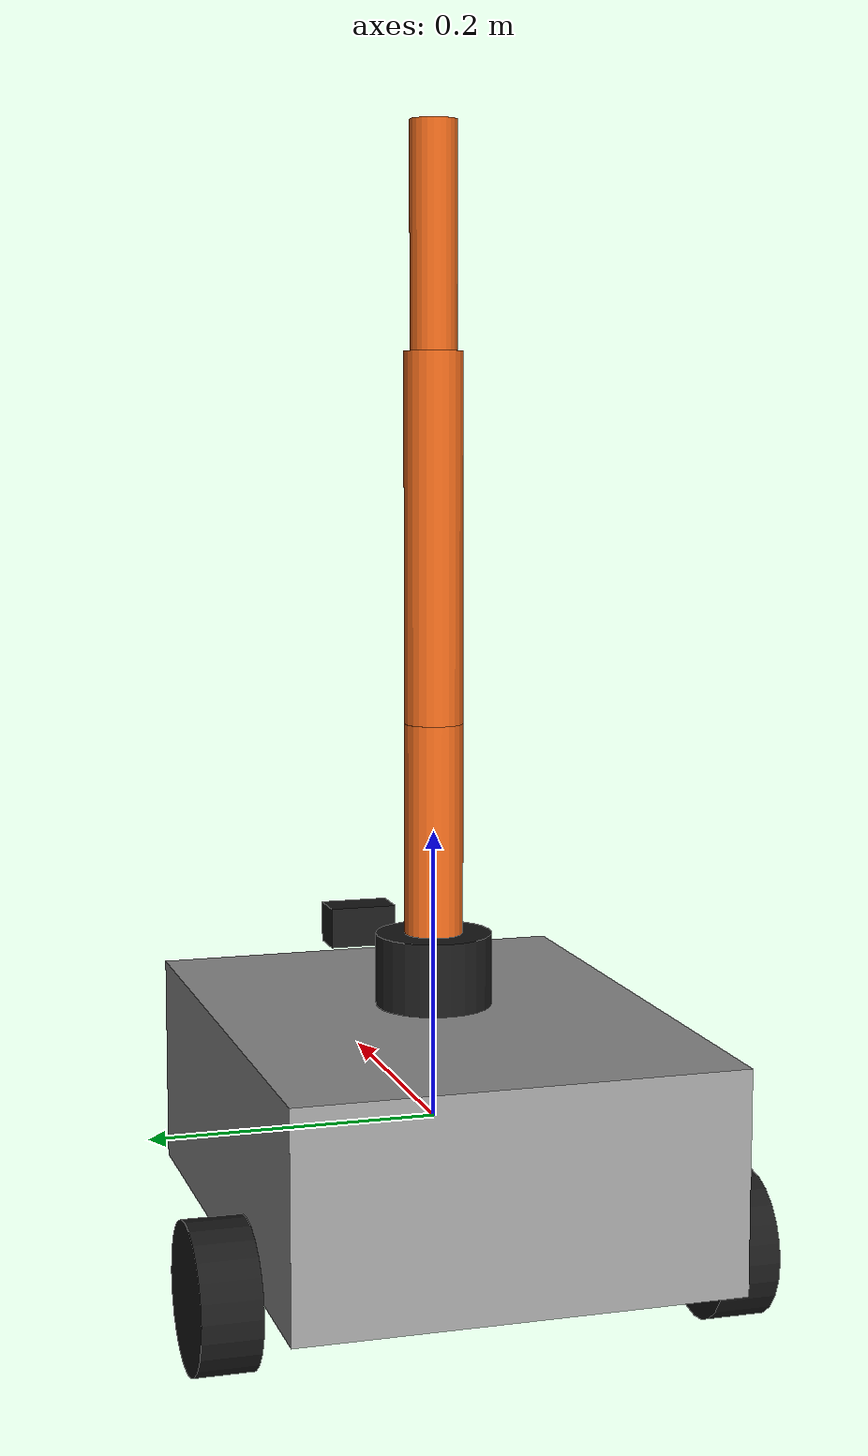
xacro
<?xml version="1.0"?>
<robot name="semih" xmlns:xacro="http://www.ros.org/wiki/xacro">

  <!-- ================= Properties ================= -->
  <xacro:property name="base_length" value="0.4"/>
  <xacro:property name="base_width"  value="0.3"/>
  <xacro:property name="base_height" value="0.15"/>
  <xacro:property name="wheel_radius" value="0.05"/>
  <xacro:property name="wheel_width"  value="0.04"/>
  <xacro:property name="wheel_separation" value="0.35"/>

  <xacro:property name="arm_link1_len" value="0.20"/>
  <xacro:property name="arm_link2_len" value="0.25"/>
  <xacro:property name="arm_link3_len" value="0.15"/>
  <xacro:property name="link_radius" value="0.02"/>

  <material name="grey">
    <color rgba="0.6 0.6 0.6 1"/>
  </material>
  <material name="orange">
    <color rgba="0.9 0.4 0.1 1"/>
  </material>
  <material name="black">
    <color rgba="0.1 0.1 0.1 1"/>
  </material>

  <!-- ================= Base ================= -->
  <link name="base_link">
    <visual>
      <geometry>
        <box size="${base_length} ${base_width} ${base_height}"/>
      </geometry>
      <material name="grey"/>
    </visual>
    <collision>
      <geometry>
        <box size="${base_length} ${base_width} ${base_height}"/>
      </geometry>
    </collision>
    <inertial>
      <mass value="5.0"/>
      <inertia ixx="0.05" ixy="0" ixz="0" iyy="0.06" iyz="0" izz="0.08"/>
    </inertial>
  </link>

  <!-- ================= Wheels (differential drive) ================= -->
  <xacro:macro name="wheel" params="prefix y_pos">
    <link name="${prefix}_wheel_link">
      <visual>
        <origin xyz="0 0 0" rpy="1.5708 0 0"/>
        <geometry>
          <cylinder radius="${wheel_radius}" length="${wheel_width}"/>
        </geometry>
        <material name="black"/>
      </visual>
      <collision>
        <origin xyz="0 0 0" rpy="1.5708 0 0"/>
        <geometry>
          <cylinder radius="${wheel_radius}" length="${wheel_width}"/>
        </geometry>
      </collision>
      <inertial>
        <mass value="0.5"/>
        <inertia ixx="0.001" ixy="0" ixz="0" iyy="0.001" iyz="0" izz="0.001"/>
      </inertial>
    </link>

    <joint name="${prefix}_wheel_joint" type="continuous">
      <parent link="base_link"/>
      <child link="${prefix}_wheel_link"/>
      <origin xyz="-0.1 ${y_pos} -${base_height/2}" rpy="0 0 0"/>
      <axis xyz="0 1 0"/>
    </joint>
  </xacro:macro>

  <xacro:wheel prefix="left"  y_pos="${wheel_separation/2}"/>
  <xacro:wheel prefix="right" y_pos="-${wheel_separation/2}"/>

  <!-- Caster (passive, fixed for simplicity in this first test) -->
  <link name="caster_wheel_link">
    <visual>
      <geometry>
        <sphere radius="${wheel_radius*0.7}"/>
      </geometry>
      <material name="black"/>
    </visual>
    <collision>
      <geometry>
        <sphere radius="${wheel_radius*0.7}"/>
      </geometry>
    </collision>
    <inertial>
      <mass value="0.2"/>
      <inertia ixx="0.0005" ixy="0" ixz="0" iyy="0.0005" iyz="0" izz="0.0005"/>
    </inertial>
  </link>

  <joint name="caster_wheel_joint" type="fixed">
    <parent link="base_link"/>
    <child link="caster_wheel_link"/>
    <origin xyz="0.15 0 -${base_height/2}" rpy="0 0 0"/>
  </joint>

  <!-- ================= Arm (3 DOF, simplified geometry) ================= -->
  <link name="arm_link1">
    <visual>
      <origin xyz="0 0 ${arm_link1_len/2}" rpy="0 0 0"/>
      <geometry>
        <cylinder radius="${link_radius}" length="${arm_link1_len}"/>
      </geometry>
      <material name="orange"/>
    </visual>
    <collision>
      <origin xyz="0 0 ${arm_link1_len/2}" rpy="0 0 0"/>
      <geometry>
        <cylinder radius="${link_radius}" length="${arm_link1_len}"/>
      </geometry>
    </collision>
    <inertial>
      <mass value="0.3"/>
      <inertia ixx="0.0005" ixy="0" ixz="0" iyy="0.0005" iyz="0" izz="0.0002"/>
    </inertial>
  </link>

  <joint name="arm_joint1" type="revolute">
    <parent link="base_link"/>
    <child link="arm_link1"/>
    <origin xyz="0 0 ${base_height/2}" rpy="0 0 0"/>
    <axis xyz="0 0 1"/>
    <limit lower="-3.14" upper="3.14" effort="10" velocity="1.0"/>
  </joint>

  <link name="arm_link2">
    <visual>
      <origin xyz="0 0 ${arm_link2_len/2}" rpy="0 0 0"/>
      <geometry>
        <cylinder radius="${link_radius}" length="${arm_link2_len}"/>
      </geometry>
      <material name="orange"/>
    </visual>
    <collision>
      <origin xyz="0 0 ${arm_link2_len/2}" rpy="0 0 0"/>
      <geometry>
        <cylinder radius="${link_radius}" length="${arm_link2_len}"/>
      </geometry>
    </collision>
    <inertial>
      <mass value="0.25"/>
      <inertia ixx="0.0004" ixy="0" ixz="0" iyy="0.0004" iyz="0" izz="0.0001"/>
    </inertial>
  </link>

  <joint name="arm_joint2" type="revolute">
    <parent link="arm_link1"/>
    <child link="arm_link2"/>
    <origin xyz="0 0 ${arm_link1_len}" rpy="0 0 0"/>
    <axis xyz="0 1 0"/>
    <limit lower="-1.57" upper="1.57" effort="10" velocity="1.0"/>
  </joint>

  <link name="arm_link3">
    <visual>
      <origin xyz="0 0 ${arm_link3_len/2}" rpy="0 0 0"/>
      <geometry>
        <cylinder radius="${link_radius*0.8}" length="${arm_link3_len}"/>
      </geometry>
      <material name="orange"/>
    </visual>
    <collision>
      <origin xyz="0 0 ${arm_link3_len/2}" rpy="0 0 0"/>
      <geometry>
        <cylinder radius="${link_radius*0.8}" length="${arm_link3_len}"/>
      </geometry>
    </collision>
    <inertial>
      <mass value="0.15"/>
      <inertia ixx="0.0002" ixy="0" ixz="0" iyy="0.0002" iyz="0" izz="0.00005"/>
    </inertial>
  </link>

  <joint name="arm_joint3" type="revolute">
    <parent link="arm_link2"/>
    <child link="arm_link3"/>
    <origin xyz="0 0 ${arm_link2_len}" rpy="0 0 0"/>
    <axis xyz="0 1 0"/>
    <limit lower="-1.57" upper="1.57" effort="10" velocity="1.0"/>
  </joint>

  <!-- ================= Camera ================= -->
  <link name="camera_link">
    <visual>
      <geometry>
        <box size="0.03 0.05 0.03"/>
      </geometry>
      <material name="black"/>
    </visual>
    <collision>
      <geometry>
        <box size="0.03 0.05 0.03"/>
      </geometry>
    </collision>
    <inertial>
      <mass value="0.05"/>
      <inertia ixx="0.00001" ixy="0" ixz="0" iyy="0.00001" iyz="0" izz="0.00001"/>
    </inertial>
  </link>

  <joint name="camera_joint" type="fixed">
    <parent link="base_link"/>
    <child link="camera_link"/>
    <!-- Mounted on the front-top edge of the base, facing forward (+x) -->
    <origin xyz="0.2 0 ${base_height/2 + 0.02}" rpy="0 0 0"/>
  </joint>

  <!-- ================= Lidar ================= -->
  <link name="lidar_link">
    <visual>
      <geometry>
        <cylinder radius="0.04" length="0.05"/>
      </geometry>
      <material name="black"/>
    </visual>
    <collision>
      <geometry>
        <cylinder radius="0.04" length="0.05"/>
      </geometry>
    </collision>
    <inertial>
      <mass value="0.1"/>
      <inertia ixx="0.0001" ixy="0" ixz="0" iyy="0.0001" iyz="0" izz="0.0001"/>
    </inertial>
  </link>

  <joint name="lidar_joint" type="fixed">
    <parent link="base_link"/>
    <child link="lidar_link"/>
    <!-- Mounted on top-center of the base -->
    <origin xyz="0 0 ${base_height/2 + 0.03}" rpy="0 0 0"/>
  </joint>

  <!-- ================= ros2_control ================= -->
  <ros2_control name="semih_arm_system" type="system">
    <hardware>
      <plugin>gz_ros2_control/GazeboSimSystem</plugin>
    </hardware>
    <joint name="arm_joint1">
      <command_interface name="position"/>
      <state_interface name="position"/>
      <state_interface name="velocity"/>
    </joint>
    <joint name="arm_joint2">
      <command_interface name="position"/>
      <state_interface name="position"/>
      <state_interface name="velocity"/>
    </joint>
    <joint name="arm_joint3">
      <command_interface name="position"/>
      <state_interface name="position"/>
      <state_interface name="velocity"/>
    </joint>
  </ros2_control>

  <!-- ================= Gazebo plugins ================= -->
  <gazebo>
    <plugin filename="libignition-gazebo-diff-drive-system.so" name="ignition::gazebo::systems::DiffDrive">
      <left_joint>left_wheel_joint</left_joint>
      <right_joint>right_wheel_joint</right_joint>
      <wheel_separation>${wheel_separation}</wheel_separation>
      <wheel_radius>${wheel_radius}</wheel_radius>
      <odom_publish_frequency>30</odom_publish_frequency>
      <topic>cmd_vel</topic>
      <odom_topic>odom</odom_topic>
      <tf_topic>/model/semih/tf</tf_topic>
      <frame_id>odom</frame_id>
      <child_frame_id>base_link</child_frame_id>
    </plugin>

    <plugin filename="libignition-gazebo-joint-state-publisher-system.so" name="ignition::gazebo::systems::JointStatePublisher">
      <update_rate>30</update_rate>
    </plugin>

    <plugin filename="gz_ros2_control-system" name="gz_ros2_control::GazeboSimROS2ControlPlugin">
      <parameters>$(find semih_description)/config/semih_controllers.yaml</parameters>
    </plugin>
  </gazebo>

  <!-- Camera sensor definition (Fortress/Ignition native sensor, no extra plugin needed) -->
  <gazebo reference="camera_link">
    <sensor name="front_camera" type="camera">
      <camera>
        <horizontal_fov>1.047</horizontal_fov>
        <image>
          <width>640</width>
          <height>480</height>
          <format>R8G8B8</format>
        </image>
        <clip>
          <near>0.05</near>
          <far>10.0</far>
        </clip>
      </camera>
      <always_on>true</always_on>
      <update_rate>30</update_rate>
      <visualize>true</visualize>
      <topic>camera/image_raw</topic>
    </sensor>
  </gazebo>

  <!-- Lidar sensor definition (2D planar scan, gpu_lidar type for Ignition Fortress) -->
  <gazebo reference="lidar_link">
    <sensor name="lidar" type="gpu_lidar">
      <pose>0 0 0 0 0 0</pose>
      <update_rate>10</update_rate>
      <always_on>true</always_on>
      <visualize>true</visualize>
      <topic>scan</topic>
      <ray>
        <scan>
          <horizontal>
            <samples>360</samples>
            <resolution>1</resolution>
            <min_angle>-3.14159</min_angle>
            <max_angle>3.14159</max_angle>
          </horizontal>
        </scan>
        <range>
          <min>0.12</min>
          <max>10.0</max>
          <resolution>0.01</resolution>
        </range>
      </ray>
    </sensor>
  </gazebo>

  <!-- Depth camera, co-located with the RGB camera (camera_link), same FOV/resolution,
       so pixel coordinates line up between the two for target 3D coordinate extraction. -->
  <gazebo reference="camera_link">
    <sensor name="depth_camera" type="depth_camera">
      <camera>
        <horizontal_fov>1.047</horizontal_fov>
        <image>
          <width>640</width>
          <height>480</height>
          <format>R_FLOAT32</format>
        </image>
        <clip>
          <near>0.05</near>
          <far>10.0</far>
        </clip>
      </camera>
      <always_on>true</always_on>
      <update_rate>15</update_rate>
      <visualize>false</visualize>
      <topic>depth_camera</topic>
    </sensor>
  </gazebo>

</robot>
